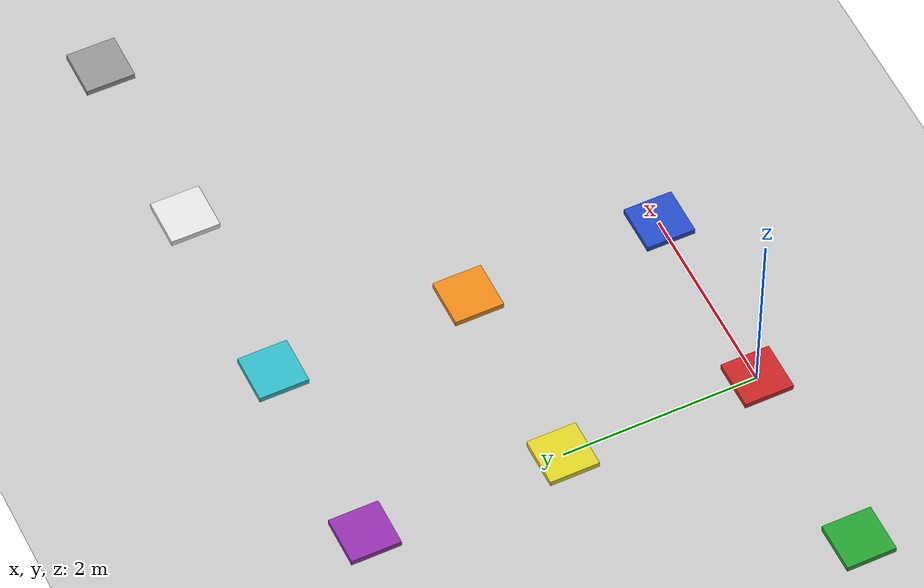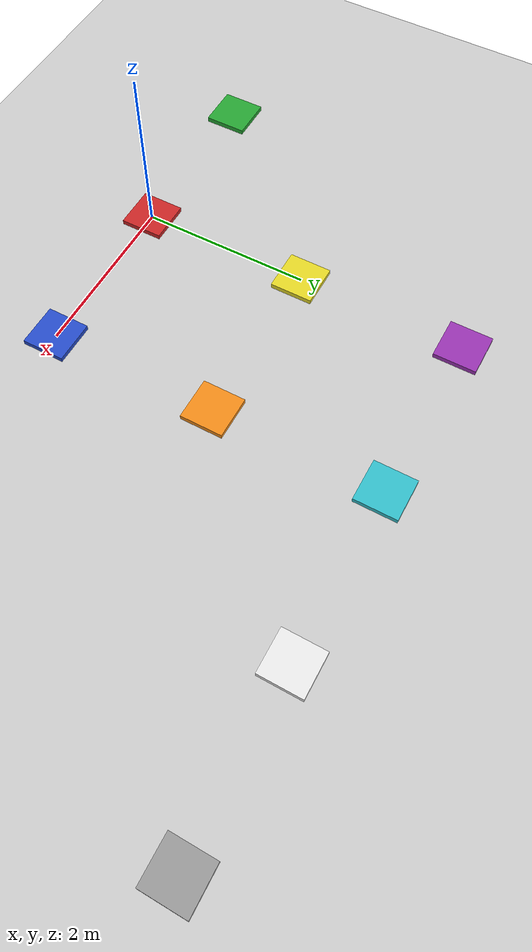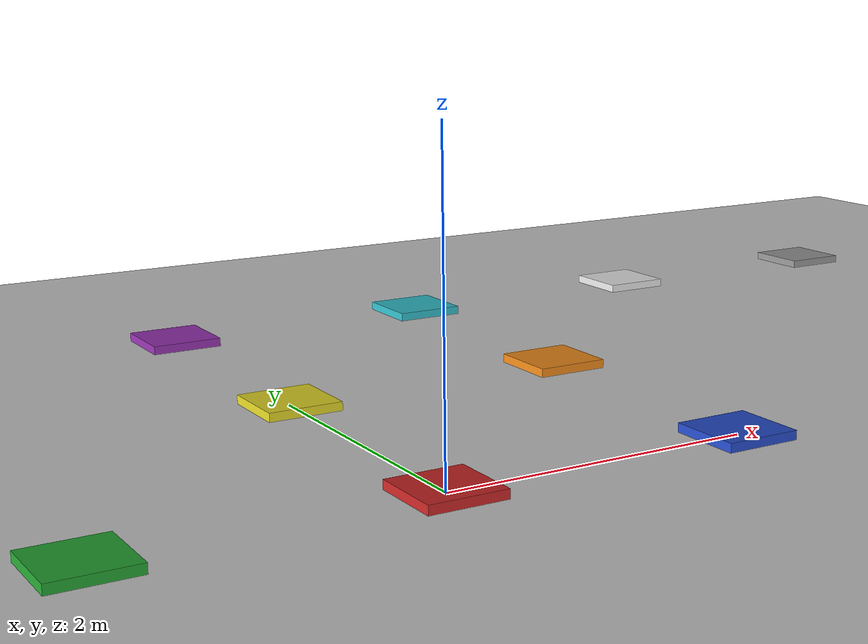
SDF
<?xml version="1.0"?>
<sdf version="1.4">
  <world name="traveling_ethiopia">
    <!-- A global light source -->
    <include>
      <uri>model://sun</uri>
    </include>

    <!-- Ground plane -->
    <include>
      <uri>model://ground_plane</uri>
    </include>

    <!-- Cities as markers/waypoints in Cartesian coordinate system -->
    <!-- Central Region -->
    <model name="addis_ababa">
      <pose>0 0 0 0 0 0</pose>
      <static>true</static>
      <link name="link">
        <visual name="visual">
          <geometry>
            <box>
              <size>0.5 0.5 0.1</size>
            </box>
          </geometry>
          <material>
            <script>
              <name>Gazebo/Red</name>
            </script>
          </material>
        </visual>
      </link>
    </model>

    <model name="adama">
      <pose>2 0 0 0 0 0</pose>
      <static>true</static>
      <link name="link">
        <visual name="visual">
          <geometry>
            <box>
              <size>0.5 0.5 0.1</size>
            </box>
          </geometry>
          <material>
            <script>
              <name>Gazebo/Blue</name>
            </script>
          </material>
        </visual>
      </link>
    </model>

    <model name="ambo">
      <pose>-2 0 0 0 0 0</pose>
      <static>true</static>
      <link name="link">
        <visual name="visual">
          <geometry>
            <box>
              <size>0.5 0.5 0.1</size>
            </box>
          </geometry>
          <material>
            <script>
              <name>Gazebo/Green</name>
            </script>
          </material>
        </visual>
      </link>
    </model>

    <model name="wolkite">
      <pose>0 2 0 0 0 0</pose>
      <static>true</static>
      <link name="link">
        <visual name="visual">
          <geometry>
            <box>
              <size>0.5 0.5 0.1</size>
            </box>
          </geometry>
          <material>
            <script>
              <name>Gazebo/Yellow</name>
            </script>
          </material>
        </visual>
      </link>
    </model>

    <model name="jimma">
      <pose>2 2 0 0 0 0</pose>
      <static>true</static>
      <link name="link">
        <visual name="visual">
          <geometry>
            <box>
              <size>0.5 0.5 0.1</size>
            </box>
          </geometry>
          <material>
            <script>
              <name>Gazebo/Orange</name>
            </script>
          </material>
        </visual>
      </link>
    </model>

    <model name="worabe">
      <pose>0 4 0 0 0 0</pose>
      <static>true</static>
      <link name="link">
        <visual name="visual">
          <geometry>
            <box>
              <size>0.5 0.5 0.1</size>
            </box>
          </geometry>
          <material>
            <script>
              <name>Gazebo/Purple</name>
            </script>
          </material>
        </visual>
      </link>
    </model>

    <model name="hossana">
      <pose>2 4 0 0 0 0</pose>
      <static>true</static>
      <link name="link">
        <visual name="visual">
          <geometry>
            <box>
              <size>0.5 0.5 0.1</size>
            </box>
          </geometry>
          <material>
            <script>
              <name>Gazebo/Cyan</name>
            </script>
          </material>
        </visual>
      </link>
    </model>

    <model name="shashemene">
      <pose>4 4 0 0 0 0</pose>
      <static>true</static>
      <link name="link">
        <visual name="visual">
          <geometry>
            <box>
              <size>0.5 0.5 0.1</size>
            </box>
          </geometry>
          <material>
            <script>
              <name>Gazebo/White</name>
            </script>
          </material>
        </visual>
      </link>
    </model>

    <model name="hawassa">
      <pose>6 4 0 0 0 0</pose>
      <static>true</static>
      <link name="link">
        <visual name="visual">
          <geometry>
            <box>
              <size>0.5 0.5 0.1</size>
            </box>
          </geometry>
          <material>
            <script>
              <name>Gazebo/Grey</name>
            </script>
          </material>
        </visual>
      </link>
    </model>

    <!-- Physics -->
    <physics type="ode">
      <gravity>0 0 -9.8</gravity>
      <ode>
        <solver>
          <type>quick</type>
          <iters>10</iters>
          <sor>1.3</sor>
        </solver>
      </ode>
    </physics>

    <!-- Scene -->
    <scene>
      <ambient>0.4 0.4 0.4 1</ambient>
      <background>0.7 0.7 0.7 1</background>
      <shadows>true</shadows>
    </scene>
  </world>
</sdf>
